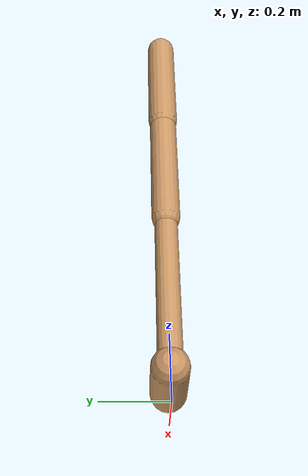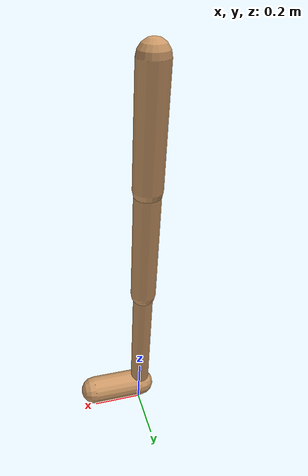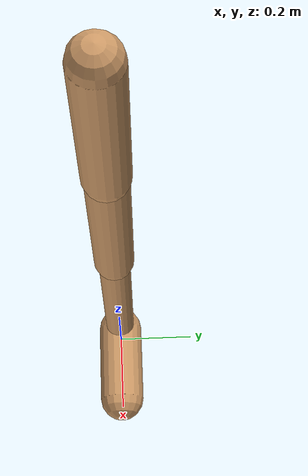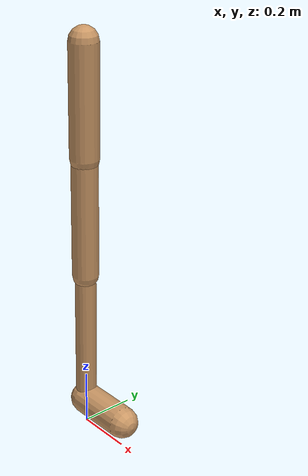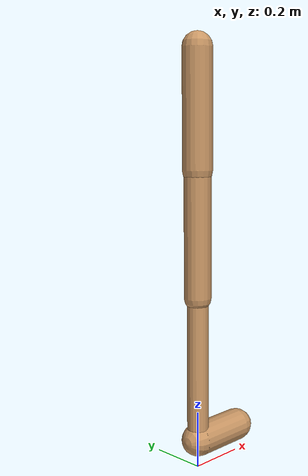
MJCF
<mujoco model="walker2d">
  <compiler angle="degree" coordinate="global" inertiafromgeom="true" />
  <default>
    <joint armature="0.01" damping=".1" limited="true" />
    <geom conaffinity="0" condim="3" contype="1" density="1000" friction="0.8 .1 .1" rgba="0.8 0.6 .4 1" />
  </default>
  <option integrator="RK4" timestep="0.002" />
  <worldbody>

    <body name="torso" pos="0 0 -0.029387493612673638">
      <joint armature="0" axis="1 0 0" damping="0" limited="false" name="ignorex" pos="0 0 0" stiffness="0" type="slide" />
      <joint armature="0" axis="0 0 1" damping="0" limited="false" name="ignorez" pos="0 0 0" ref="1.25" stiffness="0" type="slide" />
      <joint armature="0" axis="0 1 0" damping="0" limited="false" name="ignorey" pos="0 0 0" stiffness="0" type="hinge" />
      <geom fromto="0 0 1.45 0 0 1.05" name="torso_geom" size="0.05168083775060503" type="capsule" />
      <body name="thigh">
        <joint axis="0 -1 0" name="thigh_joint" pos="0 0 1.05" range="-150 0" type="hinge" />
        <geom fromto="0.0 0.0 1.05 0.0 0.0 0.6139203917112664" name="thigh_geom" size="0.04713073503631837" type="capsule" />
        <body name="leg" pos="0.0 0.0 0.013920391711266467">
          <joint axis="0 -1 0" name="leg_joint" pos="0 0 0.6" range="-150 0" type="hinge" />
          <geom fromto="0.0 0.0 0.6 0.0 0.0 0.11546710190140719" name="leg_geom" size="0.03770458802905469" type="capsule" />
          <body name="foot" pos="0.0 0.0 0.015467101901407182">
            <joint axis="0 -1 0" name="foot_joint" pos="0 0 0.1" range="-45 45" type="hinge" />
            <geom fromto="-0.0 0.0 0.1 0.20294916994854845 0.0 0.1" name="foot_geom" size="0.05769873907072574" type="capsule" />
          </body>
        </body>
      </body>

      <body name="thigh_left">
        <joint axis="0 -1 0" name="thigh_left_joint" pos="0 0 1.05" range="-150 0" type="hinge" />
        <geom fromto="0.0 0.0 1.05 0.0 0.0 0.6139203917112664" name="thigh_left_geom" rgba=".7 .3 .6 1" size="0.04713073503631837" type="capsule" />
        <body name="leg_left" pos="0.0 0.0 0.013920391711266467">
          <joint axis="0 -1 0" name="leg_left_joint" pos="0 0 0.6" range="-150 0" type="hinge" />
          <geom fromto="0.0 0.0 0.6 0.0 0.0 0.11546710190140719" name="leg_left_geom" rgba=".7 .3 .6 1" size="0.03770458802905469" type="capsule" />
          <body name="foot_left" pos="0.0 0.0 0.015467101901407182">
            <joint axis="0 -1 0" name="foot_left_joint" pos="0 0 0.1" range="-45 45" type="hinge" />
            <geom fromto="-0.0 0.0 0.1 0.20294916994854845 0.0 0.1" name="foot_left_geom" rgba=".7 .3 .6 1" size="0.05769873907072574" type="capsule" />
          </body>
        </body>
      </body>
    </body>
  </worldbody>
  <actuator>

    <motor ctrllimited="true" ctrlrange="-1.0 1.0" gear="100" joint="thigh_joint" />
    <motor ctrllimited="true" ctrlrange="-1.0 1.0" gear="100" joint="leg_joint" />
    <motor ctrllimited="true" ctrlrange="-1.0 1.0" gear="100" joint="foot_joint" />
    <motor ctrllimited="true" ctrlrange="-1.0 1.0" gear="100" joint="thigh_left_joint" />
    <motor ctrllimited="true" ctrlrange="-1.0 1.0" gear="100" joint="leg_left_joint" />
    <motor ctrllimited="true" ctrlrange="-1.0 1.0" gear="100" joint="foot_left_joint" />

  </actuator>
</mujoco>
